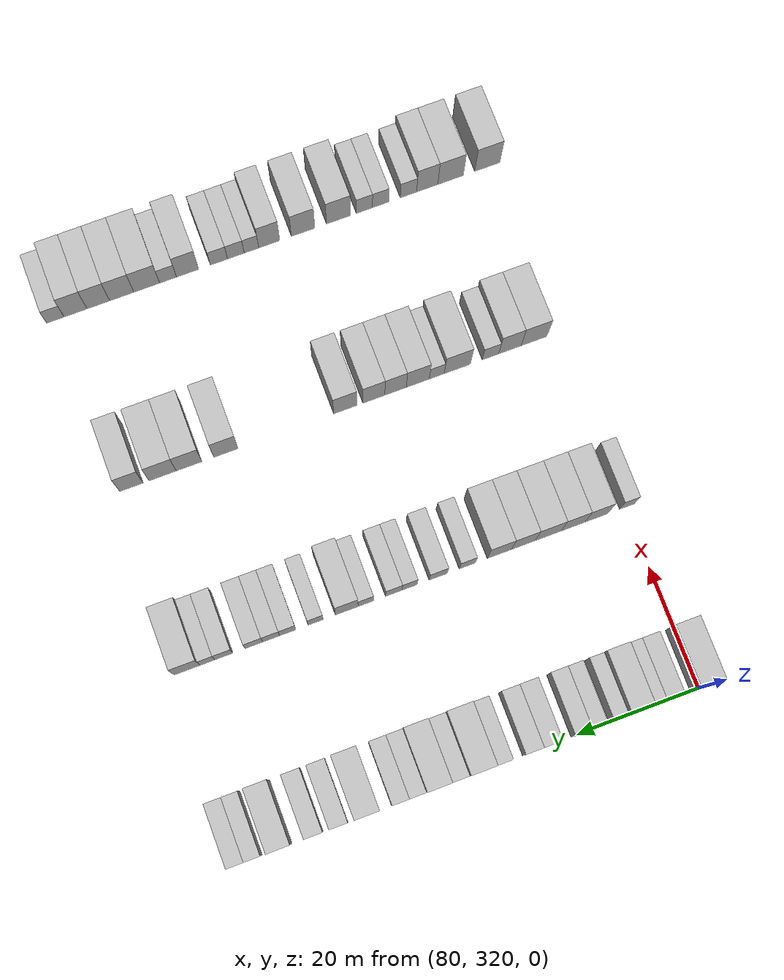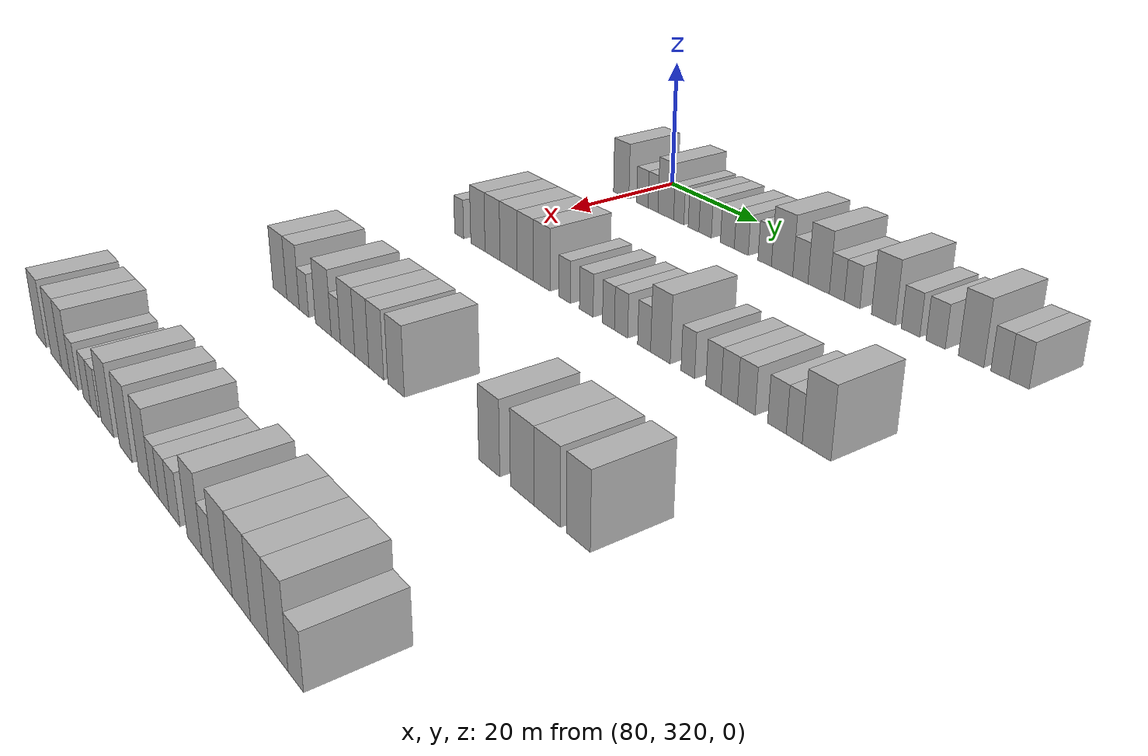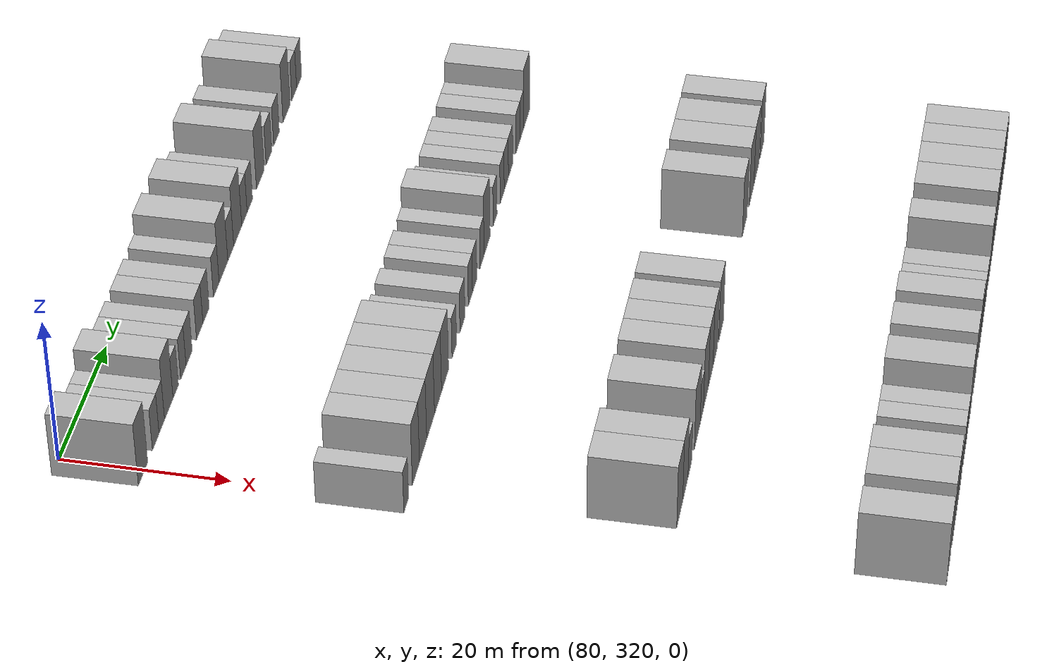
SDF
<sdf version="1.6">
 <world name="default">
  <model name="building_650">
   <static>1</static>
   <pose>85.0000 319.4057 0 0.000000 0.000000 0.000000</pose>
   <link name="link">
    <pose>0 0 4.50 0 0 0</pose>
    <collision name="collision"><geometry><box><size>10.0000 3.9852 9.0000</size></box></geometry></collision>
    <visual name="visual">
     <cast_shadows>0</cast_shadows>
     <geometry><box><size>10.0000 3.9852 9.0000</size></box></geometry>
     <material>
      <script>
       <uri>model://HANNAS_wall/materials/scripts</uri>
       <uri>model://HANNAS_wall/materials/textures</uri>
       <name>vrc/HANNAS_wall</name>
      </script>
     </material>
    </visual>
   </link>
  </model>
  <model name="building_651">
   <static>1</static>
   <pose>85.0000 324.8359 0 0.000000 0.000000 0.000000</pose>
   <link name="link">
    <pose>0 0 3.00 0 0 0</pose>
    <collision name="collision"><geometry><box><size>10.0000 2.8751 6.0000</size></box></geometry></collision>
    <visual name="visual">
     <cast_shadows>0</cast_shadows>
     <geometry><box><size>10.0000 2.8751 6.0000</size></box></geometry>
     <material>
      <script>
       <uri>model://HANNAS_wall/materials/scripts</uri>
       <uri>model://HANNAS_wall/materials/textures</uri>
       <name>vrc/HANNAS_wall</name>
      </script>
     </material>
    </visual>
   </link>
  </model>
  <model name="building_652">
   <static>1</static>
   <pose>85.0000 327.4739 0 0.000000 0.000000 0.000000</pose>
   <link name="link">
    <pose>0 0 3.00 0 0 0</pose>
    <collision name="collision"><geometry><box><size>10.0000 2.4009 6.0000</size></box></geometry></collision>
    <visual name="visual">
     <cast_shadows>0</cast_shadows>
     <geometry><box><size>10.0000 2.4009 6.0000</size></box></geometry>
     <material>
      <script>
       <uri>model://HANNAS_wall/materials/scripts</uri>
       <uri>model://HANNAS_wall/materials/textures</uri>
       <name>vrc/HANNAS_wall</name>
      </script>
     </material>
    </visual>
   </link>
  </model>
  <model name="building_653">
   <static>1</static>
   <pose>85.0000 330.5550 0 0.000000 0.000000 0.000000</pose>
   <link name="link">
    <pose>0 0 4.50 0 0 0</pose>
    <collision name="collision"><geometry><box><size>10.0000 3.7612 9.0000</size></box></geometry></collision>
    <visual name="visual">
     <cast_shadows>0</cast_shadows>
     <geometry><box><size>10.0000 3.7612 9.0000</size></box></geometry>
     <material>
      <script>
       <uri>model://HANNAS_wall/materials/scripts</uri>
       <uri>model://HANNAS_wall/materials/textures</uri>
       <name>vrc/HANNAS_wall</name>
      </script>
     </material>
    </visual>
   </link>
  </model>
  <model name="building_654">
   <static>1</static>
   <pose>85.0000 333.6376 0 0.000000 0.000000 0.000000</pose>
   <link name="link">
    <pose>0 0 3.00 0 0 0</pose>
    <collision name="collision"><geometry><box><size>10.0000 2.4040 6.0000</size></box></geometry></collision>
    <visual name="visual">
     <cast_shadows>0</cast_shadows>
     <geometry><box><size>10.0000 2.4040 6.0000</size></box></geometry>
     <material>
      <script>
       <uri>model://HANNAS_wall/materials/scripts</uri>
       <uri>model://HANNAS_wall/materials/textures</uri>
       <name>vrc/HANNAS_wall</name>
      </script>
     </material>
    </visual>
   </link>
  </model>
  <model name="building_655">
   <static>1</static>
   <pose>85.0000 337.0673 0 0.000000 0.000000 0.000000</pose>
   <link name="link">
    <pose>0 0 3.00 0 0 0</pose>
    <collision name="collision"><geometry><box><size>10.0000 2.4554 6.0000</size></box></geometry></collision>
    <visual name="visual">
     <cast_shadows>0</cast_shadows>
     <geometry><box><size>10.0000 2.4554 6.0000</size></box></geometry>
     <material>
      <script>
       <uri>model://HANNAS_wall/materials/scripts</uri>
       <uri>model://HANNAS_wall/materials/textures</uri>
       <name>vrc/HANNAS_wall</name>
      </script>
     </material>
    </visual>
   </link>
  </model>
  <model name="building_656">
   <static>1</static>
   <pose>85.0000 339.6899 0 0.000000 0.000000 0.000000</pose>
   <link name="link">
    <pose>0 0 3.00 0 0 0</pose>
    <collision name="collision"><geometry><box><size>10.0000 2.7897 6.0000</size></box></geometry></collision>
    <visual name="visual">
     <cast_shadows>0</cast_shadows>
     <geometry><box><size>10.0000 2.7897 6.0000</size></box></geometry>
     <material>
      <script>
       <uri>model://HANNAS_wall/materials/scripts</uri>
       <uri>model://HANNAS_wall/materials/textures</uri>
       <name>vrc/HANNAS_wall</name>
      </script>
     </material>
    </visual>
   </link>
  </model>
  <model name="building_657">
   <static>1</static>
   <pose>85.0000 344.5798 0 0.000000 0.000000 0.000000</pose>
   <link name="link">
    <pose>0 0 3.00 0 0 0</pose>
    <collision name="collision"><geometry><box><size>10.0000 2.9900 6.0000</size></box></geometry></collision>
    <visual name="visual">
     <cast_shadows>0</cast_shadows>
     <geometry><box><size>10.0000 2.9900 6.0000</size></box></geometry>
     <material>
      <script>
       <uri>model://HANNAS_wall/materials/scripts</uri>
       <uri>model://HANNAS_wall/materials/textures</uri>
       <name>vrc/HANNAS_wall</name>
      </script>
     </material>
    </visual>
   </link>
  </model>
  <model name="building_658">
   <static>1</static>
   <pose>85.0000 347.5463 0 0.000000 0.000000 0.000000</pose>
   <link name="link">
    <pose>0 0 3.00 0 0 0</pose>
    <collision name="collision"><geometry><box><size>10.0000 2.9429 6.0000</size></box></geometry></collision>
    <visual name="visual">
     <cast_shadows>0</cast_shadows>
     <geometry><box><size>10.0000 2.9429 6.0000</size></box></geometry>
     <material>
      <script>
       <uri>model://HANNAS_wall/materials/scripts</uri>
       <uri>model://HANNAS_wall/materials/textures</uri>
       <name>vrc/HANNAS_wall</name>
      </script>
     </material>
    </visual>
   </link>
  </model>
  <model name="building_659">
   <static>1</static>
   <pose>85.0000 352.3758 0 0.000000 0.000000 0.000000</pose>
   <link name="link">
    <pose>0 0 3.00 0 0 0</pose>
    <collision name="collision"><geometry><box><size>10.0000 2.7163 6.0000</size></box></geometry></collision>
    <visual name="visual">
     <cast_shadows>0</cast_shadows>
     <geometry><box><size>10.0000 2.7163 6.0000</size></box></geometry>
     <material>
      <script>
       <uri>model://HANNAS_wall/materials/scripts</uri>
       <uri>model://HANNAS_wall/materials/textures</uri>
       <name>vrc/HANNAS_wall</name>
      </script>
     </material>
    </visual>
   </link>
  </model>
  <model name="building_660">
   <static>1</static>
   <pose>85.0000 355.8348 0 0.000000 0.000000 0.000000</pose>
   <link name="link">
    <pose>0 0 4.50 0 0 0</pose>
    <collision name="collision"><geometry><box><size>10.0000 4.2016 9.0000</size></box></geometry></collision>
    <visual name="visual">
     <cast_shadows>0</cast_shadows>
     <geometry><box><size>10.0000 4.2016 9.0000</size></box></geometry>
     <material>
      <script>
       <uri>model://HANNAS_wall/materials/scripts</uri>
       <uri>model://HANNAS_wall/materials/textures</uri>
       <name>vrc/HANNAS_wall</name>
      </script>
     </material>
    </visual>
   </link>
  </model>
  <model name="building_661">
   <static>1</static>
   <pose>85.0000 359.3872 0 0.000000 0.000000 0.000000</pose>
   <link name="link">
    <pose>0 0 3.00 0 0 0</pose>
    <collision name="collision"><geometry><box><size>10.0000 2.9032 6.0000</size></box></geometry></collision>
    <visual name="visual">
     <cast_shadows>0</cast_shadows>
     <geometry><box><size>10.0000 2.9032 6.0000</size></box></geometry>
     <material>
      <script>
       <uri>model://HANNAS_wall/materials/scripts</uri>
       <uri>model://HANNAS_wall/materials/textures</uri>
       <name>vrc/HANNAS_wall</name>
      </script>
     </material>
    </visual>
   </link>
  </model>
  <model name="building_662">
   <static>1</static>
   <pose>85.0000 362.8289 0 0.000000 0.000000 0.000000</pose>
   <link name="link">
    <pose>0 0 4.50 0 0 0</pose>
    <collision name="collision"><geometry><box><size>10.0000 3.9802 9.0000</size></box></geometry></collision>
    <visual name="visual">
     <cast_shadows>0</cast_shadows>
     <geometry><box><size>10.0000 3.9802 9.0000</size></box></geometry>
     <material>
      <script>
       <uri>model://HANNAS_wall/materials/scripts</uri>
       <uri>model://HANNAS_wall/materials/textures</uri>
       <name>vrc/HANNAS_wall</name>
      </script>
     </material>
    </visual>
   </link>
  </model>
  <model name="building_663">
   <static>1</static>
   <pose>85.0000 366.1705 0 0.000000 0.000000 0.000000</pose>
   <link name="link">
    <pose>0 0 3.00 0 0 0</pose>
    <collision name="collision"><geometry><box><size>10.0000 2.7031 6.0000</size></box></geometry></collision>
    <visual name="visual">
     <cast_shadows>0</cast_shadows>
     <geometry><box><size>10.0000 2.7031 6.0000</size></box></geometry>
     <material>
      <script>
       <uri>model://HANNAS_wall/materials/scripts</uri>
       <uri>model://HANNAS_wall/materials/textures</uri>
       <name>vrc/HANNAS_wall</name>
      </script>
     </material>
    </visual>
   </link>
  </model>
  <model name="building_664">
   <static>1</static>
   <pose>85.0000 368.8937 0 0.000000 0.000000 0.000000</pose>
   <link name="link">
    <pose>0 0 3.00 0 0 0</pose>
    <collision name="collision"><geometry><box><size>10.0000 2.7432 6.0000</size></box></geometry></collision>
    <visual name="visual">
     <cast_shadows>0</cast_shadows>
     <geometry><box><size>10.0000 2.7432 6.0000</size></box></geometry>
     <material>
      <script>
       <uri>model://HANNAS_wall/materials/scripts</uri>
       <uri>model://HANNAS_wall/materials/textures</uri>
       <name>vrc/HANNAS_wall</name>
      </script>
     </material>
    </visual>
   </link>
  </model>
  <model name="building_665">
   <static>1</static>
   <pose>85.0000 374.2608 0 0.000000 0.000000 0.000000</pose>
   <link name="link">
    <pose>0 0 4.50 0 0 0</pose>
    <collision name="collision"><geometry><box><size>10.0000 3.9910 9.0000</size></box></geometry></collision>
    <visual name="visual">
     <cast_shadows>0</cast_shadows>
     <geometry><box><size>10.0000 3.9910 9.0000</size></box></geometry>
     <material>
      <script>
       <uri>model://HANNAS_wall/materials/scripts</uri>
       <uri>model://HANNAS_wall/materials/textures</uri>
       <name>vrc/HANNAS_wall</name>
      </script>
     </material>
    </visual>
   </link>
  </model>
  <model name="building_666">
   <static>1</static>
   <pose>85.0000 378.7452 0 0.000000 0.000000 0.000000</pose>
   <link name="link">
    <pose>0 0 3.00 0 0 0</pose>
    <collision name="collision"><geometry><box><size>10.0000 2.9777 6.0000</size></box></geometry></collision>
    <visual name="visual">
     <cast_shadows>0</cast_shadows>
     <geometry><box><size>10.0000 2.9777 6.0000</size></box></geometry>
     <material>
      <script>
       <uri>model://HANNAS_wall/materials/scripts</uri>
       <uri>model://HANNAS_wall/materials/textures</uri>
       <name>vrc/HANNAS_wall</name>
      </script>
     </material>
    </visual>
   </link>
  </model>
  <model name="building_667">
   <static>1</static>
   <pose>85.0000 382.7237 0 0.000000 0.000000 0.000000</pose>
   <link name="link">
    <pose>0 0 3.00 0 0 0</pose>
    <collision name="collision"><geometry><box><size>10.0000 2.9794 6.0000</size></box></geometry></collision>
    <visual name="visual">
     <cast_shadows>0</cast_shadows>
     <geometry><box><size>10.0000 2.9794 6.0000</size></box></geometry>
     <material>
      <script>
       <uri>model://HANNAS_wall/materials/scripts</uri>
       <uri>model://HANNAS_wall/materials/textures</uri>
       <name>vrc/HANNAS_wall</name>
      </script>
     </material>
    </visual>
   </link>
  </model>
  <model name="building_668">
   <static>1</static>
   <pose>85.0000 388.0957 0 0.000000 0.000000 0.000000</pose>
   <link name="link">
    <pose>0 0 4.50 0 0 0</pose>
    <collision name="collision"><geometry><box><size>10.0000 3.7646 9.0000</size></box></geometry></collision>
    <visual name="visual">
     <cast_shadows>0</cast_shadows>
     <geometry><box><size>10.0000 3.7646 9.0000</size></box></geometry>
     <material>
      <script>
       <uri>model://HANNAS_wall/materials/scripts</uri>
       <uri>model://HANNAS_wall/materials/textures</uri>
       <name>vrc/HANNAS_wall</name>
      </script>
     </material>
    </visual>
   </link>
  </model>
  <model name="building_669">
   <static>1</static>
   <pose>85.0000 392.2840 0 0.000000 0.000000 0.000000</pose>
   <link name="link">
    <pose>0 0 3.00 0 0 0</pose>
    <collision name="collision"><geometry><box><size>10.0000 2.6119 6.0000</size></box></geometry></collision>
    <visual name="visual">
     <cast_shadows>0</cast_shadows>
     <geometry><box><size>10.0000 2.6119 6.0000</size></box></geometry>
     <material>
      <script>
       <uri>model://HANNAS_wall/materials/scripts</uri>
       <uri>model://HANNAS_wall/materials/textures</uri>
       <name>vrc/HANNAS_wall</name>
      </script>
     </material>
    </visual>
   </link>
  </model>
  <model name="building_670">
   <static>1</static>
   <pose>85.0000 394.9745 0 0.000000 0.000000 0.000000</pose>
   <link name="link">
    <pose>0 0 3.00 0 0 0</pose>
    <collision name="collision"><geometry><box><size>10.0000 2.7691 6.0000</size></box></geometry></collision>
    <visual name="visual">
     <cast_shadows>0</cast_shadows>
     <geometry><box><size>10.0000 2.7691 6.0000</size></box></geometry>
     <material>
      <script>
       <uri>model://HANNAS_wall/materials/scripts</uri>
       <uri>model://HANNAS_wall/materials/textures</uri>
       <name>vrc/HANNAS_wall</name>
      </script>
     </material>
    </visual>
   </link>
  </model>
  <model name="building_879">
   <static>1</static>
   <pose>115.0000 319.5684 0 0.000000 0.000000 0.000000</pose>
   <link name="link">
    <pose>0 0 3.00 0 0 0</pose>
    <collision name="collision"><geometry><box><size>10.0000 2.5425 6.0000</size></box></geometry></collision>
    <visual name="visual">
     <cast_shadows>0</cast_shadows>
     <geometry><box><size>10.0000 2.5425 6.0000</size></box></geometry>
     <material>
      <script>
       <uri>model://HANNAS_wall/materials/scripts</uri>
       <uri>model://HANNAS_wall/materials/textures</uri>
       <name>vrc/HANNAS_wall</name>
      </script>
     </material>
    </visual>
   </link>
  </model>
  <model name="building_880">
   <static>1</static>
   <pose>115.0000 324.7741 0 0.000000 0.000000 0.000000</pose>
   <link name="link">
    <pose>0 0 4.50 0 0 0</pose>
    <collision name="collision"><geometry><box><size>10.0000 3.8690 9.0000</size></box></geometry></collision>
    <visual name="visual">
     <cast_shadows>0</cast_shadows>
     <geometry><box><size>10.0000 3.8690 9.0000</size></box></geometry>
     <material>
      <script>
       <uri>model://HANNAS_wall/materials/scripts</uri>
       <uri>model://HANNAS_wall/materials/textures</uri>
       <name>vrc/HANNAS_wall</name>
      </script>
     </material>
    </visual>
   </link>
  </model>
  <model name="building_881">
   <static>1</static>
   <pose>115.0000 328.6915 0 0.000000 0.000000 0.000000</pose>
   <link name="link">
    <pose>0 0 4.50 0 0 0</pose>
    <collision name="collision"><geometry><box><size>10.0000 3.9658 9.0000</size></box></geometry></collision>
    <visual name="visual">
     <cast_shadows>0</cast_shadows>
     <geometry><box><size>10.0000 3.9658 9.0000</size></box></geometry>
     <material>
      <script>
       <uri>model://HANNAS_wall/materials/scripts</uri>
       <uri>model://HANNAS_wall/materials/textures</uri>
       <name>vrc/HANNAS_wall</name>
      </script>
     </material>
    </visual>
   </link>
  </model>
  <model name="building_882">
   <static>1</static>
   <pose>115.0000 332.8563 0 0.000000 0.000000 0.000000</pose>
   <link name="link">
    <pose>0 0 4.50 0 0 0</pose>
    <collision name="collision"><geometry><box><size>10.0000 4.3638 9.0000</size></box></geometry></collision>
    <visual name="visual">
     <cast_shadows>0</cast_shadows>
     <geometry><box><size>10.0000 4.3638 9.0000</size></box></geometry>
     <material>
      <script>
       <uri>model://HANNAS_wall/materials/scripts</uri>
       <uri>model://HANNAS_wall/materials/textures</uri>
       <name>vrc/HANNAS_wall</name>
      </script>
     </material>
    </visual>
   </link>
  </model>
  <model name="building_883">
   <static>1</static>
   <pose>115.0000 337.0356 0 0.000000 0.000000 0.000000</pose>
   <link name="link">
    <pose>0 0 4.50 0 0 0</pose>
    <collision name="collision"><geometry><box><size>10.0000 3.9948 9.0000</size></box></geometry></collision>
    <visual name="visual">
     <cast_shadows>0</cast_shadows>
     <geometry><box><size>10.0000 3.9948 9.0000</size></box></geometry>
     <material>
      <script>
       <uri>model://HANNAS_wall/materials/scripts</uri>
       <uri>model://HANNAS_wall/materials/textures</uri>
       <name>vrc/HANNAS_wall</name>
      </script>
     </material>
    </visual>
   </link>
  </model>
  <model name="building_884">
   <static>1</static>
   <pose>115.0000 341.0495 0 0.000000 0.000000 0.000000</pose>
   <link name="link">
    <pose>0 0 4.50 0 0 0</pose>
    <collision name="collision"><geometry><box><size>10.0000 4.0331 9.0000</size></box></geometry></collision>
    <visual name="visual">
     <cast_shadows>0</cast_shadows>
     <geometry><box><size>10.0000 4.0331 9.0000</size></box></geometry>
     <material>
      <script>
       <uri>model://HANNAS_wall/materials/scripts</uri>
       <uri>model://HANNAS_wall/materials/textures</uri>
       <name>vrc/HANNAS_wall</name>
      </script>
     </material>
    </visual>
   </link>
  </model>
  <model name="building_885">
   <static>1</static>
   <pose>115.0000 346.4018 0 0.000000 0.000000 0.000000</pose>
   <link name="link">
    <pose>0 0 3.00 0 0 0</pose>
    <collision name="collision"><geometry><box><size>10.0000 2.6715 6.0000</size></box></geometry></collision>
    <visual name="visual">
     <cast_shadows>0</cast_shadows>
     <geometry><box><size>10.0000 2.6715 6.0000</size></box></geometry>
     <material>
      <script>
       <uri>model://HANNAS_wall/materials/scripts</uri>
       <uri>model://HANNAS_wall/materials/textures</uri>
       <name>vrc/HANNAS_wall</name>
      </script>
     </material>
    </visual>
   </link>
  </model>
  <model name="building_886">
   <static>1</static>
   <pose>115.0000 351.2361 0 0.000000 0.000000 0.000000</pose>
   <link name="link">
    <pose>0 0 3.00 0 0 0</pose>
    <collision name="collision"><geometry><box><size>10.0000 2.9971 6.0000</size></box></geometry></collision>
    <visual name="visual">
     <cast_shadows>0</cast_shadows>
     <geometry><box><size>10.0000 2.9971 6.0000</size></box></geometry>
     <material>
      <script>
       <uri>model://HANNAS_wall/materials/scripts</uri>
       <uri>model://HANNAS_wall/materials/textures</uri>
       <name>vrc/HANNAS_wall</name>
      </script>
     </material>
    </visual>
   </link>
  </model>
  <model name="building_887">
   <static>1</static>
   <pose>115.0000 355.9840 0 0.000000 0.000000 0.000000</pose>
   <link name="link">
    <pose>0 0 3.00 0 0 0</pose>
    <collision name="collision"><geometry><box><size>10.0000 2.4987 6.0000</size></box></geometry></collision>
    <visual name="visual">
     <cast_shadows>0</cast_shadows>
     <geometry><box><size>10.0000 2.4987 6.0000</size></box></geometry>
     <material>
      <script>
       <uri>model://HANNAS_wall/materials/scripts</uri>
       <uri>model://HANNAS_wall/materials/textures</uri>
       <name>vrc/HANNAS_wall</name>
      </script>
     </material>
    </visual>
   </link>
  </model>
  <model name="building_888">
   <static>1</static>
   <pose>115.0000 358.5894 0 0.000000 0.000000 0.000000</pose>
   <link name="link">
    <pose>0 0 3.00 0 0 0</pose>
    <collision name="collision"><geometry><box><size>10.0000 2.7123 6.0000</size></box></geometry></collision>
    <visual name="visual">
     <cast_shadows>0</cast_shadows>
     <geometry><box><size>10.0000 2.7123 6.0000</size></box></geometry>
     <material>
      <script>
       <uri>model://HANNAS_wall/materials/scripts</uri>
       <uri>model://HANNAS_wall/materials/textures</uri>
       <name>vrc/HANNAS_wall</name>
      </script>
     </material>
    </visual>
   </link>
  </model>
  <model name="building_889">
   <static>1</static>
   <pose>115.0000 363.2138 0 0.000000 0.000000 0.000000</pose>
   <link name="link">
    <pose>0 0 3.00 0 0 0</pose>
    <collision name="collision"><geometry><box><size>10.0000 2.5365 6.0000</size></box></geometry></collision>
    <visual name="visual">
     <cast_shadows>0</cast_shadows>
     <geometry><box><size>10.0000 2.5365 6.0000</size></box></geometry>
     <material>
      <script>
       <uri>model://HANNAS_wall/materials/scripts</uri>
       <uri>model://HANNAS_wall/materials/textures</uri>
       <name>vrc/HANNAS_wall</name>
      </script>
     </material>
    </visual>
   </link>
  </model>
  <model name="building_890">
   <static>1</static>
   <pose>115.0000 366.3483 0 0.000000 0.000000 0.000000</pose>
   <link name="link">
    <pose>0 0 4.50 0 0 0</pose>
    <collision name="collision"><geometry><box><size>10.0000 3.7325 9.0000</size></box></geometry></collision>
    <visual name="visual">
     <cast_shadows>0</cast_shadows>
     <geometry><box><size>10.0000 3.7325 9.0000</size></box></geometry>
     <material>
      <script>
       <uri>model://HANNAS_wall/materials/scripts</uri>
       <uri>model://HANNAS_wall/materials/textures</uri>
       <name>vrc/HANNAS_wall</name>
      </script>
     </material>
    </visual>
   </link>
  </model>
  <model name="building_891">
   <static>1</static>
   <pose>115.0000 371.4466 0 0.000000 0.000000 0.000000</pose>
   <link name="link">
    <pose>0 0 3.00 0 0 0</pose>
    <collision name="collision"><geometry><box><size>10.0000 2.4640 6.0000</size></box></geometry></collision>
    <visual name="visual">
     <cast_shadows>0</cast_shadows>
     <geometry><box><size>10.0000 2.4640 6.0000</size></box></geometry>
     <material>
      <script>
       <uri>model://HANNAS_wall/materials/scripts</uri>
       <uri>model://HANNAS_wall/materials/textures</uri>
       <name>vrc/HANNAS_wall</name>
      </script>
     </material>
    </visual>
   </link>
  </model>
  <model name="building_892">
   <static>1</static>
   <pose>115.0000 375.9930 0 0.000000 0.000000 0.000000</pose>
   <link name="link">
    <pose>0 0 3.00 0 0 0</pose>
    <collision name="collision"><geometry><box><size>10.0000 2.6288 6.0000</size></box></geometry></collision>
    <visual name="visual">
     <cast_shadows>0</cast_shadows>
     <geometry><box><size>10.0000 2.6288 6.0000</size></box></geometry>
     <material>
      <script>
       <uri>model://HANNAS_wall/materials/scripts</uri>
       <uri>model://HANNAS_wall/materials/textures</uri>
       <name>vrc/HANNAS_wall</name>
      </script>
     </material>
    </visual>
   </link>
  </model>
  <model name="building_893">
   <static>1</static>
   <pose>115.0000 378.6982 0 0.000000 0.000000 0.000000</pose>
   <link name="link">
    <pose>0 0 3.00 0 0 0</pose>
    <collision name="collision"><geometry><box><size>10.0000 2.7817 6.0000</size></box></geometry></collision>
    <visual name="visual">
     <cast_shadows>0</cast_shadows>
     <geometry><box><size>10.0000 2.7817 6.0000</size></box></geometry>
     <material>
      <script>
       <uri>model://HANNAS_wall/materials/scripts</uri>
       <uri>model://HANNAS_wall/materials/textures</uri>
       <name>vrc/HANNAS_wall</name>
      </script>
     </material>
    </visual>
   </link>
  </model>
  <model name="building_894">
   <static>1</static>
   <pose>115.0000 381.5331 0 0.000000 0.000000 0.000000</pose>
   <link name="link">
    <pose>0 0 3.00 0 0 0</pose>
    <collision name="collision"><geometry><box><size>10.0000 2.8880 6.0000</size></box></geometry></collision>
    <visual name="visual">
     <cast_shadows>0</cast_shadows>
     <geometry><box><size>10.0000 2.8880 6.0000</size></box></geometry>
     <material>
      <script>
       <uri>model://HANNAS_wall/materials/scripts</uri>
       <uri>model://HANNAS_wall/materials/textures</uri>
       <name>vrc/HANNAS_wall</name>
      </script>
     </material>
    </visual>
   </link>
  </model>
  <model name="building_895">
   <static>1</static>
   <pose>115.0000 386.4292 0 0.000000 0.000000 0.000000</pose>
   <link name="link">
    <pose>0 0 3.00 0 0 0</pose>
    <collision name="collision"><geometry><box><size>10.0000 2.9042 6.0000</size></box></geometry></collision>
    <visual name="visual">
     <cast_shadows>0</cast_shadows>
     <geometry><box><size>10.0000 2.9042 6.0000</size></box></geometry>
     <material>
      <script>
       <uri>model://HANNAS_wall/materials/scripts</uri>
       <uri>model://HANNAS_wall/materials/textures</uri>
       <name>vrc/HANNAS_wall</name>
      </script>
     </material>
    </visual>
   </link>
  </model>
  <model name="building_896">
   <static>1</static>
   <pose>115.0000 389.0901 0 0.000000 0.000000 0.000000</pose>
   <link name="link">
    <pose>0 0 3.00 0 0 0</pose>
    <collision name="collision"><geometry><box><size>10.0000 2.4178 6.0000</size></box></geometry></collision>
    <visual name="visual">
     <cast_shadows>0</cast_shadows>
     <geometry><box><size>10.0000 2.4178 6.0000</size></box></geometry>
     <material>
      <script>
       <uri>model://HANNAS_wall/materials/scripts</uri>
       <uri>model://HANNAS_wall/materials/textures</uri>
       <name>vrc/HANNAS_wall</name>
      </script>
     </material>
    </visual>
   </link>
  </model>
  <model name="building_897">
   <static>1</static>
   <pose>115.0000 392.3992 0 0.000000 0.000000 0.000000</pose>
   <link name="link">
    <pose>0 0 4.50 0 0 0</pose>
    <collision name="collision"><geometry><box><size>10.0000 4.2003 9.0000</size></box></geometry></collision>
    <visual name="visual">
     <cast_shadows>0</cast_shadows>
     <geometry><box><size>10.0000 4.2003 9.0000</size></box></geometry>
     <material>
      <script>
       <uri>model://HANNAS_wall/materials/scripts</uri>
       <uri>model://HANNAS_wall/materials/textures</uri>
       <name>vrc/HANNAS_wall</name>
      </script>
     </material>
    </visual>
   </link>
  </model>
  <model name="building_1104">
   <static>1</static>
   <pose>145.0000 323.3546 0 0.000000 0.000000 0.000000</pose>
   <link name="link">
    <pose>0 0 4.50 0 0 0</pose>
    <collision name="collision"><geometry><box><size>10.0000 4.4218 9.0000</size></box></geometry></collision>
    <visual name="visual">
     <cast_shadows>0</cast_shadows>
     <geometry><box><size>10.0000 4.4218 9.0000</size></box></geometry>
     <material>
      <script>
       <uri>model://HANNAS_wall/materials/scripts</uri>
       <uri>model://HANNAS_wall/materials/textures</uri>
       <name>vrc/HANNAS_wall</name>
      </script>
     </material>
    </visual>
   </link>
  </model>
  <model name="building_1105">
   <static>1</static>
   <pose>145.0000 327.4854 0 0.000000 0.000000 0.000000</pose>
   <link name="link">
    <pose>0 0 4.50 0 0 0</pose>
    <collision name="collision"><geometry><box><size>10.0000 3.8398 9.0000</size></box></geometry></collision>
    <visual name="visual">
     <cast_shadows>0</cast_shadows>
     <geometry><box><size>10.0000 3.8398 9.0000</size></box></geometry>
     <material>
      <script>
       <uri>model://HANNAS_wall/materials/scripts</uri>
       <uri>model://HANNAS_wall/materials/textures</uri>
       <name>vrc/HANNAS_wall</name>
      </script>
     </material>
    </visual>
   </link>
  </model>
  <model name="building_1106">
   <static>1</static>
   <pose>145.0000 330.8142 0 0.000000 0.000000 0.000000</pose>
   <link name="link">
    <pose>0 0 3.00 0 0 0</pose>
    <collision name="collision"><geometry><box><size>10.0000 2.8177 6.0000</size></box></geometry></collision>
    <visual name="visual">
     <cast_shadows>0</cast_shadows>
     <geometry><box><size>10.0000 2.8177 6.0000</size></box></geometry>
     <material>
      <script>
       <uri>model://HANNAS_wall/materials/scripts</uri>
       <uri>model://HANNAS_wall/materials/textures</uri>
       <name>vrc/HANNAS_wall</name>
      </script>
     </material>
    </visual>
   </link>
  </model>
  <model name="building_1107">
   <static>1</static>
   <pose>145.0000 336.4649 0 0.000000 0.000000 0.000000</pose>
   <link name="link">
    <pose>0 0 4.50 0 0 0</pose>
    <collision name="collision"><geometry><box><size>10.0000 4.4839 9.0000</size></box></geometry></collision>
    <visual name="visual">
     <cast_shadows>0</cast_shadows>
     <geometry><box><size>10.0000 4.4839 9.0000</size></box></geometry>
     <material>
      <script>
       <uri>model://HANNAS_wall/materials/scripts</uri>
       <uri>model://HANNAS_wall/materials/textures</uri>
       <name>vrc/HANNAS_wall</name>
      </script>
     </material>
    </visual>
   </link>
  </model>
  <model name="building_1108">
   <static>1</static>
   <pose>145.0000 339.9783 0 0.000000 0.000000 0.000000</pose>
   <link name="link">
    <pose>0 0 3.00 0 0 0</pose>
    <collision name="collision"><geometry><box><size>10.0000 2.5427 6.0000</size></box></geometry></collision>
    <visual name="visual">
     <cast_shadows>0</cast_shadows>
     <geometry><box><size>10.0000 2.5427 6.0000</size></box></geometry>
     <material>
      <script>
       <uri>model://HANNAS_wall/materials/scripts</uri>
       <uri>model://HANNAS_wall/materials/textures</uri>
       <name>vrc/HANNAS_wall</name>
      </script>
     </material>
    </visual>
   </link>
  </model>
  <model name="building_1109">
   <static>1</static>
   <pose>145.0000 343.2006 0 0.000000 0.000000 0.000000</pose>
   <link name="link">
    <pose>0 0 4.50 0 0 0</pose>
    <collision name="collision"><geometry><box><size>10.0000 3.9019 9.0000</size></box></geometry></collision>
    <visual name="visual">
     <cast_shadows>0</cast_shadows>
     <geometry><box><size>10.0000 3.9019 9.0000</size></box></geometry>
     <material>
      <script>
       <uri>model://HANNAS_wall/materials/scripts</uri>
       <uri>model://HANNAS_wall/materials/textures</uri>
       <name>vrc/HANNAS_wall</name>
      </script>
     </material>
    </visual>
   </link>
  </model>
  <model name="building_1110">
   <static>1</static>
   <pose>145.0000 346.9733 0 0.000000 0.000000 0.000000</pose>
   <link name="link">
    <pose>0 0 4.50 0 0 0</pose>
    <collision name="collision"><geometry><box><size>10.0000 3.6435 9.0000</size></box></geometry></collision>
    <visual name="visual">
     <cast_shadows>0</cast_shadows>
     <geometry><box><size>10.0000 3.6435 9.0000</size></box></geometry>
     <material>
      <script>
       <uri>model://HANNAS_wall/materials/scripts</uri>
       <uri>model://HANNAS_wall/materials/textures</uri>
       <name>vrc/HANNAS_wall</name>
      </script>
     </material>
    </visual>
   </link>
  </model>
  <model name="building_1111">
   <static>1</static>
   <pose>145.0000 350.6445 0 0.000000 0.000000 0.000000</pose>
   <link name="link">
    <pose>0 0 4.50 0 0 0</pose>
    <collision name="collision"><geometry><box><size>10.0000 3.6990 9.0000</size></box></geometry></collision>
    <visual name="visual">
     <cast_shadows>0</cast_shadows>
     <geometry><box><size>10.0000 3.6990 9.0000</size></box></geometry>
     <material>
      <script>
       <uri>model://HANNAS_wall/materials/scripts</uri>
       <uri>model://HANNAS_wall/materials/textures</uri>
       <name>vrc/HANNAS_wall</name>
      </script>
     </material>
    </visual>
   </link>
  </model>
  <model name="building_1112">
   <static>1</static>
   <pose>145.0000 355.4594 0 0.000000 0.000000 0.000000</pose>
   <link name="link">
    <pose>0 0 4.50 0 0 0</pose>
    <collision name="collision"><geometry><box><size>10.0000 3.9309 9.0000</size></box></geometry></collision>
    <visual name="visual">
     <cast_shadows>0</cast_shadows>
     <geometry><box><size>10.0000 3.9309 9.0000</size></box></geometry>
     <material>
      <script>
       <uri>model://HANNAS_wall/materials/scripts</uri>
       <uri>model://HANNAS_wall/materials/textures</uri>
       <name>vrc/HANNAS_wall</name>
      </script>
     </material>
    </visual>
   </link>
  </model>
  <model name="building_1113">
   <static>1</static>
   <pose>145.0000 375.4853 0 0.000000 0.000000 0.000000</pose>
   <link name="link">
    <pose>0 0 4.50 0 0 0</pose>
    <collision name="collision"><geometry><box><size>10.0000 4.0403 9.0000</size></box></geometry></collision>
    <visual name="visual">
     <cast_shadows>0</cast_shadows>
     <geometry><box><size>10.0000 4.0403 9.0000</size></box></geometry>
     <material>
      <script>
       <uri>model://HANNAS_wall/materials/scripts</uri>
       <uri>model://HANNAS_wall/materials/textures</uri>
       <name>vrc/HANNAS_wall</name>
      </script>
     </material>
    </visual>
   </link>
  </model>
  <model name="building_1114">
   <static>1</static>
   <pose>145.0000 381.6353 0 0.000000 0.000000 0.000000</pose>
   <link name="link">
    <pose>0 0 4.50 0 0 0</pose>
    <collision name="collision"><geometry><box><size>10.0000 4.2598 9.0000</size></box></geometry></collision>
    <visual name="visual">
     <cast_shadows>0</cast_shadows>
     <geometry><box><size>10.0000 4.2598 9.0000</size></box></geometry>
     <material>
      <script>
       <uri>model://HANNAS_wall/materials/scripts</uri>
       <uri>model://HANNAS_wall/materials/textures</uri>
       <name>vrc/HANNAS_wall</name>
      </script>
     </material>
    </visual>
   </link>
  </model>
  <model name="building_1115">
   <static>1</static>
   <pose>145.0000 386.0150 0 0.000000 0.000000 0.000000</pose>
   <link name="link">
    <pose>0 0 4.50 0 0 0</pose>
    <collision name="collision"><geometry><box><size>10.0000 4.4996 9.0000</size></box></geometry></collision>
    <visual name="visual">
     <cast_shadows>0</cast_shadows>
     <geometry><box><size>10.0000 4.4996 9.0000</size></box></geometry>
     <material>
      <script>
       <uri>model://HANNAS_wall/materials/scripts</uri>
       <uri>model://HANNAS_wall/materials/textures</uri>
       <name>vrc/HANNAS_wall</name>
      </script>
     </material>
    </visual>
   </link>
  </model>
  <model name="building_1116">
   <static>1</static>
   <pose>145.0000 391.1926 0 0.000000 0.000000 0.000000</pose>
   <link name="link">
    <pose>0 0 4.50 0 0 0</pose>
    <collision name="collision"><geometry><box><size>10.0000 3.8556 9.0000</size></box></geometry></collision>
    <visual name="visual">
     <cast_shadows>0</cast_shadows>
     <geometry><box><size>10.0000 3.8556 9.0000</size></box></geometry>
     <material>
      <script>
       <uri>model://HANNAS_wall/materials/scripts</uri>
       <uri>model://HANNAS_wall/materials/textures</uri>
       <name>vrc/HANNAS_wall</name>
      </script>
     </material>
    </visual>
   </link>
  </model>
  <model name="building_1327">
   <static>1</static>
   <pose>175.0000 319.6492 0 0.000000 0.000000 0.000000</pose>
   <link name="link">
    <pose>0 0 4.50 0 0 0</pose>
    <collision name="collision"><geometry><box><size>10.0000 4.3937 9.0000</size></box></geometry></collision>
    <visual name="visual">
     <cast_shadows>0</cast_shadows>
     <geometry><box><size>10.0000 4.3937 9.0000</size></box></geometry>
     <material>
      <script>
       <uri>model://HANNAS_wall/materials/scripts</uri>
       <uri>model://HANNAS_wall/materials/textures</uri>
       <name>vrc/HANNAS_wall</name>
      </script>
     </material>
    </visual>
   </link>
  </model>
  <model name="building_1328">
   <static>1</static>
   <pose>175.0000 326.0672 0 0.000000 0.000000 0.000000</pose>
   <link name="link">
    <pose>0 0 4.50 0 0 0</pose>
    <collision name="collision"><geometry><box><size>10.0000 4.4422 9.0000</size></box></geometry></collision>
    <visual name="visual">
     <cast_shadows>0</cast_shadows>
     <geometry><box><size>10.0000 4.4422 9.0000</size></box></geometry>
     <material>
      <script>
       <uri>model://HANNAS_wall/materials/scripts</uri>
       <uri>model://HANNAS_wall/materials/textures</uri>
       <name>vrc/HANNAS_wall</name>
      </script>
     </material>
    </visual>
   </link>
  </model>
  <model name="building_1329">
   <static>1</static>
   <pose>175.0000 330.1327 0 0.000000 0.000000 0.000000</pose>
   <link name="link">
    <pose>0 0 4.50 0 0 0</pose>
    <collision name="collision"><geometry><box><size>10.0000 3.6888 9.0000</size></box></geometry></collision>
    <visual name="visual">
     <cast_shadows>0</cast_shadows>
     <geometry><box><size>10.0000 3.6888 9.0000</size></box></geometry>
     <material>
      <script>
       <uri>model://HANNAS_wall/materials/scripts</uri>
       <uri>model://HANNAS_wall/materials/textures</uri>
       <name>vrc/HANNAS_wall</name>
      </script>
     </material>
    </visual>
   </link>
  </model>
  <model name="building_1330">
   <static>1</static>
   <pose>175.0000 333.4000 0 0.000000 0.000000 0.000000</pose>
   <link name="link">
    <pose>0 0 3.00 0 0 0</pose>
    <collision name="collision"><geometry><box><size>10.0000 2.8460 6.0000</size></box></geometry></collision>
    <visual name="visual">
     <cast_shadows>0</cast_shadows>
     <geometry><box><size>10.0000 2.8460 6.0000</size></box></geometry>
     <material>
      <script>
       <uri>model://HANNAS_wall/materials/scripts</uri>
       <uri>model://HANNAS_wall/materials/textures</uri>
       <name>vrc/HANNAS_wall</name>
      </script>
     </material>
    </visual>
   </link>
  </model>
  <model name="building_1331">
   <static>1</static>
   <pose>175.0000 338.2312 0 0.000000 0.000000 0.000000</pose>
   <link name="link">
    <pose>0 0 3.00 0 0 0</pose>
    <collision name="collision"><geometry><box><size>10.0000 2.8164 6.0000</size></box></geometry></collision>
    <visual name="visual">
     <cast_shadows>0</cast_shadows>
     <geometry><box><size>10.0000 2.8164 6.0000</size></box></geometry>
     <material>
      <script>
       <uri>model://HANNAS_wall/materials/scripts</uri>
       <uri>model://HANNAS_wall/materials/textures</uri>
       <name>vrc/HANNAS_wall</name>
      </script>
     </material>
    </visual>
   </link>
  </model>
  <model name="building_1332">
   <static>1</static>
   <pose>175.0000 341.0337 0 0.000000 0.000000 0.000000</pose>
   <link name="link">
    <pose>0 0 3.00 0 0 0</pose>
    <collision name="collision"><geometry><box><size>10.0000 2.7885 6.0000</size></box></geometry></collision>
    <visual name="visual">
     <cast_shadows>0</cast_shadows>
     <geometry><box><size>10.0000 2.7885 6.0000</size></box></geometry>
     <material>
      <script>
       <uri>model://HANNAS_wall/materials/scripts</uri>
       <uri>model://HANNAS_wall/materials/textures</uri>
       <name>vrc/HANNAS_wall</name>
      </script>
     </material>
    </visual>
   </link>
  </model>
  <model name="building_1333">
   <static>1</static>
   <pose>175.0000 345.5076 0 0.000000 0.000000 0.000000</pose>
   <link name="link">
    <pose>0 0 4.50 0 0 0</pose>
    <collision name="collision"><geometry><box><size>10.0000 4.1593 9.0000</size></box></geometry></collision>
    <visual name="visual">
     <cast_shadows>0</cast_shadows>
     <geometry><box><size>10.0000 4.1593 9.0000</size></box></geometry>
     <material>
      <script>
       <uri>model://HANNAS_wall/materials/scripts</uri>
       <uri>model://HANNAS_wall/materials/textures</uri>
       <name>vrc/HANNAS_wall</name>
      </script>
     </material>
    </visual>
   </link>
  </model>
  <model name="building_1334">
   <static>1</static>
   <pose>175.0000 351.6056 0 0.000000 0.000000 0.000000</pose>
   <link name="link">
    <pose>0 0 4.50 0 0 0</pose>
    <collision name="collision"><geometry><box><size>10.0000 4.0367 9.0000</size></box></geometry></collision>
    <visual name="visual">
     <cast_shadows>0</cast_shadows>
     <geometry><box><size>10.0000 4.0367 9.0000</size></box></geometry>
     <material>
      <script>
       <uri>model://HANNAS_wall/materials/scripts</uri>
       <uri>model://HANNAS_wall/materials/textures</uri>
       <name>vrc/HANNAS_wall</name>
      </script>
     </material>
    </visual>
   </link>
  </model>
  <model name="building_1335">
   <static>1</static>
   <pose>175.0000 357.4265 0 0.000000 0.000000 0.000000</pose>
   <link name="link">
    <pose>0 0 4.50 0 0 0</pose>
    <collision name="collision"><geometry><box><size>10.0000 3.6052 9.0000</size></box></geometry></collision>
    <visual name="visual">
     <cast_shadows>0</cast_shadows>
     <geometry><box><size>10.0000 3.6052 9.0000</size></box></geometry>
     <material>
      <script>
       <uri>model://HANNAS_wall/materials/scripts</uri>
       <uri>model://HANNAS_wall/materials/textures</uri>
       <name>vrc/HANNAS_wall</name>
      </script>
     </material>
    </visual>
   </link>
  </model>
  <model name="building_1336">
   <static>1</static>
   <pose>175.0000 360.4776 0 0.000000 0.000000 0.000000</pose>
   <link name="link">
    <pose>0 0 3.00 0 0 0</pose>
    <collision name="collision"><geometry><box><size>10.0000 2.4970 6.0000</size></box></geometry></collision>
    <visual name="visual">
     <cast_shadows>0</cast_shadows>
     <geometry><box><size>10.0000 2.4970 6.0000</size></box></geometry>
     <material>
      <script>
       <uri>model://HANNAS_wall/materials/scripts</uri>
       <uri>model://HANNAS_wall/materials/textures</uri>
       <name>vrc/HANNAS_wall</name>
      </script>
     </material>
    </visual>
   </link>
  </model>
  <model name="building_1337">
   <static>1</static>
   <pose>175.0000 363.1527 0 0.000000 0.000000 0.000000</pose>
   <link name="link">
    <pose>0 0 3.00 0 0 0</pose>
    <collision name="collision"><geometry><box><size>10.0000 2.8532 6.0000</size></box></geometry></collision>
    <visual name="visual">
     <cast_shadows>0</cast_shadows>
     <geometry><box><size>10.0000 2.8532 6.0000</size></box></geometry>
     <material>
      <script>
       <uri>model://HANNAS_wall/materials/scripts</uri>
       <uri>model://HANNAS_wall/materials/textures</uri>
       <name>vrc/HANNAS_wall</name>
      </script>
     </material>
    </visual>
   </link>
  </model>
  <model name="building_1338">
   <static>1</static>
   <pose>175.0000 366.0424 0 0.000000 0.000000 0.000000</pose>
   <link name="link">
    <pose>0 0 3.00 0 0 0</pose>
    <collision name="collision"><geometry><box><size>10.0000 2.9262 6.0000</size></box></geometry></collision>
    <visual name="visual">
     <cast_shadows>0</cast_shadows>
     <geometry><box><size>10.0000 2.9262 6.0000</size></box></geometry>
     <material>
      <script>
       <uri>model://HANNAS_wall/materials/scripts</uri>
       <uri>model://HANNAS_wall/materials/textures</uri>
       <name>vrc/HANNAS_wall</name>
      </script>
     </material>
    </visual>
   </link>
  </model>
  <model name="building_1339">
   <static>1</static>
   <pose>175.0000 371.3893 0 0.000000 0.000000 0.000000</pose>
   <link name="link">
    <pose>0 0 4.50 0 0 0</pose>
    <collision name="collision"><geometry><box><size>10.0000 3.7674 9.0000</size></box></geometry></collision>
    <visual name="visual">
     <cast_shadows>0</cast_shadows>
     <geometry><box><size>10.0000 3.7674 9.0000</size></box></geometry>
     <material>
      <script>
       <uri>model://HANNAS_wall/materials/scripts</uri>
       <uri>model://HANNAS_wall/materials/textures</uri>
       <name>vrc/HANNAS_wall</name>
      </script>
     </material>
    </visual>
   </link>
  </model>
  <model name="building_1340">
   <static>1</static>
   <pose>175.0000 374.7110 0 0.000000 0.000000 0.000000</pose>
   <link name="link">
    <pose>0 0 3.00 0 0 0</pose>
    <collision name="collision"><geometry><box><size>10.0000 2.8761 6.0000</size></box></geometry></collision>
    <visual name="visual">
     <cast_shadows>0</cast_shadows>
     <geometry><box><size>10.0000 2.8761 6.0000</size></box></geometry>
     <material>
      <script>
       <uri>model://HANNAS_wall/materials/scripts</uri>
       <uri>model://HANNAS_wall/materials/textures</uri>
       <name>vrc/HANNAS_wall</name>
      </script>
     </material>
    </visual>
   </link>
  </model>
  <model name="building_1341">
   <static>1</static>
   <pose>175.0000 378.3401 0 0.000000 0.000000 0.000000</pose>
   <link name="link">
    <pose>0 0 4.50 0 0 0</pose>
    <collision name="collision"><geometry><box><size>10.0000 4.3822 9.0000</size></box></geometry></collision>
    <visual name="visual">
     <cast_shadows>0</cast_shadows>
     <geometry><box><size>10.0000 4.3822 9.0000</size></box></geometry>
     <material>
      <script>
       <uri>model://HANNAS_wall/materials/scripts</uri>
       <uri>model://HANNAS_wall/materials/textures</uri>
       <name>vrc/HANNAS_wall</name>
      </script>
     </material>
    </visual>
   </link>
  </model>
  <model name="building_1342">
   <static>1</static>
   <pose>175.0000 382.5733 0 0.000000 0.000000 0.000000</pose>
   <link name="link">
    <pose>0 0 4.50 0 0 0</pose>
    <collision name="collision"><geometry><box><size>10.0000 4.0842 9.0000</size></box></geometry></collision>
    <visual name="visual">
     <cast_shadows>0</cast_shadows>
     <geometry><box><size>10.0000 4.0842 9.0000</size></box></geometry>
     <material>
      <script>
       <uri>model://HANNAS_wall/materials/scripts</uri>
       <uri>model://HANNAS_wall/materials/textures</uri>
       <name>vrc/HANNAS_wall</name>
      </script>
     </material>
    </visual>
   </link>
  </model>
  <model name="building_1343">
   <static>1</static>
   <pose>175.0000 386.5373 0 0.000000 0.000000 0.000000</pose>
   <link name="link">
    <pose>0 0 4.50 0 0 0</pose>
    <collision name="collision"><geometry><box><size>10.0000 3.8438 9.0000</size></box></geometry></collision>
    <visual name="visual">
     <cast_shadows>0</cast_shadows>
     <geometry><box><size>10.0000 3.8438 9.0000</size></box></geometry>
     <material>
      <script>
       <uri>model://HANNAS_wall/materials/scripts</uri>
       <uri>model://HANNAS_wall/materials/textures</uri>
       <name>vrc/HANNAS_wall</name>
      </script>
     </material>
    </visual>
   </link>
  </model>
  <model name="building_1344">
   <static>1</static>
   <pose>175.0000 390.3885 0 0.000000 0.000000 0.000000</pose>
   <link name="link">
    <pose>0 0 4.50 0 0 0</pose>
    <collision name="collision"><geometry><box><size>10.0000 3.8587 9.0000</size></box></geometry></collision>
    <visual name="visual">
     <cast_shadows>0</cast_shadows>
     <geometry><box><size>10.0000 3.8587 9.0000</size></box></geometry>
     <material>
      <script>
       <uri>model://HANNAS_wall/materials/scripts</uri>
       <uri>model://HANNAS_wall/materials/textures</uri>
       <name>vrc/HANNAS_wall</name>
      </script>
     </material>
    </visual>
   </link>
  </model>
  <model name="building_1345">
   <static>1</static>
   <pose>175.0000 393.7915 0 0.000000 0.000000 0.000000</pose>
   <link name="link">
    <pose>0 0 3.00 0 0 0</pose>
    <collision name="collision"><geometry><box><size>10.0000 2.9472 6.0000</size></box></geometry></collision>
    <visual name="visual">
     <cast_shadows>0</cast_shadows>
     <geometry><box><size>10.0000 2.9472 6.0000</size></box></geometry>
     <material>
      <script>
       <uri>model://HANNAS_wall/materials/scripts</uri>
       <uri>model://HANNAS_wall/materials/textures</uri>
       <name>vrc/HANNAS_wall</name>
      </script>
     </material>
    </visual>
   </link>
  </model>
 </world>
</sdf>
